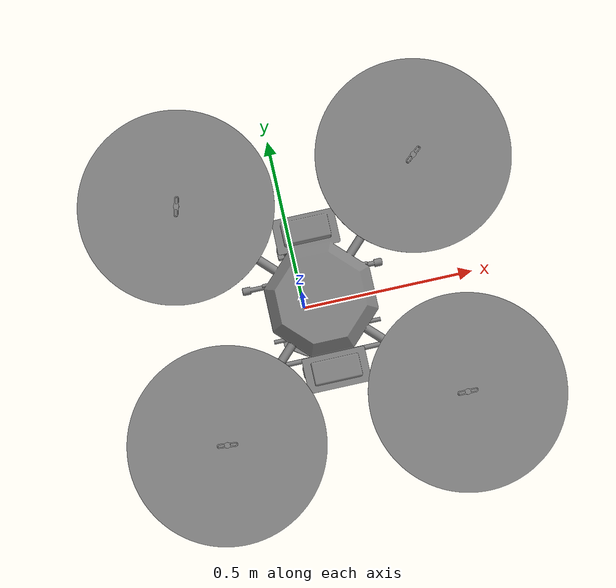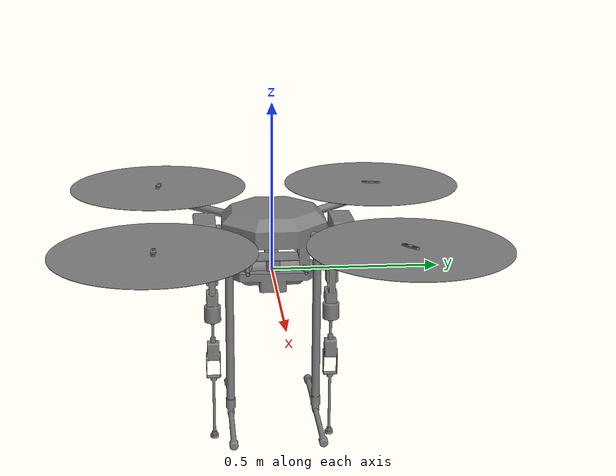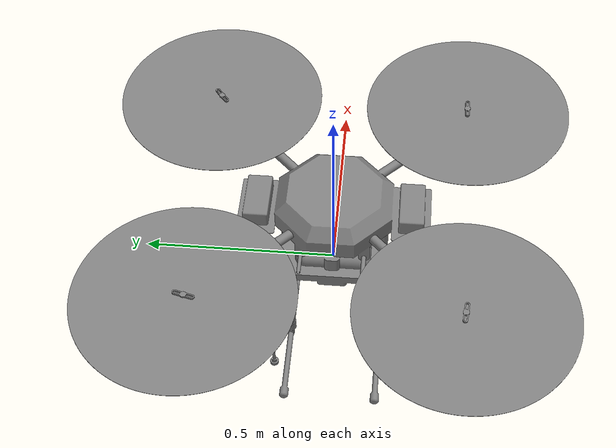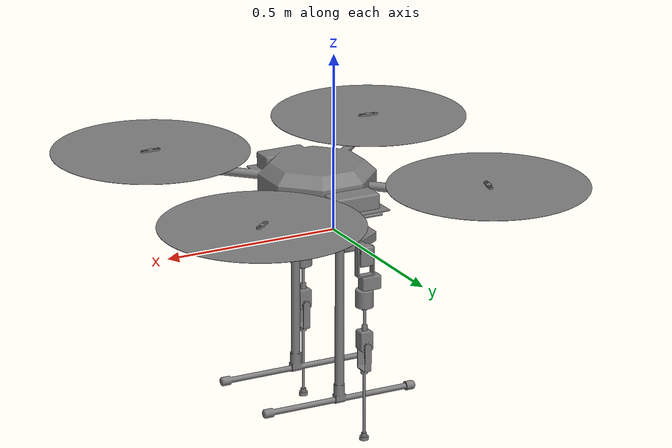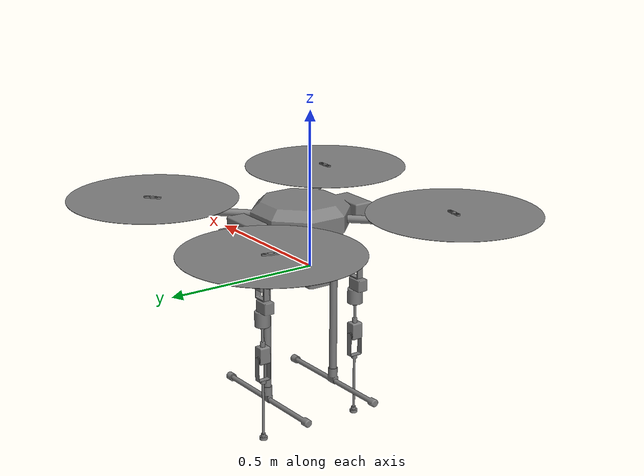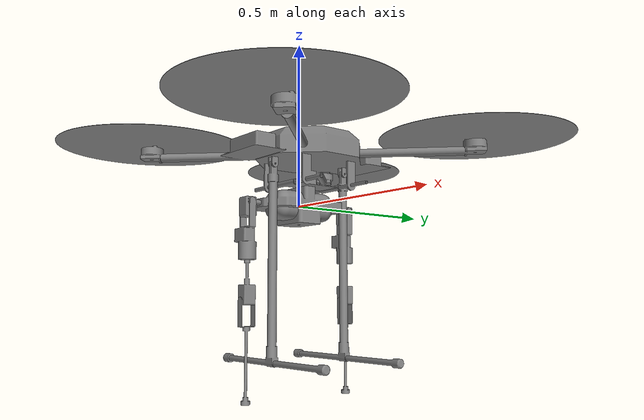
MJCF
<?xml version="1.0" ?>
<mujoco model="LiCAS_A1">
	<compiler meshdir="../meshes" angle="radian" autolimits="true" balanceinertia="true" boundmass="0.000001" boundinertia="0.000001"/>
	<option>
		<flag contact="enable"/>
	</option>
	<default>
		<default class="visual">
			<geom contype="0" conaffinity="0"/>
		</default>
		<default class="collision">
			<geom rgba="0.9 0.9 0.9 0.0"/>
		</default>
	</default>
	<asset>
		<mesh name="ShoulderPitchStructure" file="obj/ShoulderPitchStructure.obj" scale="1.0 1.0 1.0"/>
		<mesh name="UCX_ShoulderPitchStructure_001" file="stl/mjcf/UCX_ShoulderPitchStructure_001.stl" scale="1.0 1.0 1.0"/>
		<mesh name="UCX_ShoulderPitchStructure_002" file="stl/mjcf/UCX_ShoulderPitchStructure_002.stl" scale="1.0 1.0 1.0"/>
		<mesh name="UCX_ShoulderPitchStructure_003" file="stl/mjcf/UCX_ShoulderPitchStructure_003.stl" scale="1.0 1.0 1.0"/>
		<mesh name="ShoulderRollStructureRight" file="obj/ShoulderRollStructureRight.obj" scale="1.0 1.0 1.0"/>
		<mesh name="UCX_ShoulderRollStructureRight_001" file="stl/mjcf/UCX_ShoulderRollStructureRight_001.stl" scale="1.0 1.0 1.0"/>
		<mesh name="UCX_ShoulderRollStructureRight_002" file="stl/mjcf/UCX_ShoulderRollStructureRight_002.stl" scale="1.0 1.0 1.0"/>
		<mesh name="UCX_ShoulderRollStructureRight_003" file="stl/mjcf/UCX_ShoulderRollStructureRight_003.stl" scale="1.0 1.0 1.0"/>
		<mesh name="ShoulderRollStructureLeft" file="obj/ShoulderRollStructureLeft.obj" scale="1.0 1.0 1.0"/>
		<mesh name="UCX_ShoulderRollStructureLeft_001" file="stl/mjcf/UCX_ShoulderRollStructureLeft_001.stl" scale="1.0 1.0 1.0"/>
		<mesh name="UCX_ShoulderRollStructureLeft_002" file="stl/mjcf/UCX_ShoulderRollStructureLeft_002.stl" scale="1.0 1.0 1.0"/>
		<mesh name="UCX_ShoulderRollStructureLeft_003" file="stl/mjcf/UCX_ShoulderRollStructureLeft_003.stl" scale="1.0 1.0 1.0"/>
		<mesh name="ShoulderYawStructure" file="obj/ShoulderYawStructure.obj" scale="1.0 1.0 1.0"/>
		<mesh name="UCX_ShoulderYawStructure_001" file="stl/mjcf/UCX_ShoulderYawStructure_001.stl" scale="1.0 1.0 1.0"/>
		<mesh name="UCX_ShoulderYawStructure_002" file="stl/mjcf/UCX_ShoulderYawStructure_002.stl" scale="1.0 1.0 1.0"/>
		<mesh name="UCX_ShoulderYawStructure_003" file="stl/mjcf/UCX_ShoulderYawStructure_003.stl" scale="1.0 1.0 1.0"/>
		<mesh name="UCX_ShoulderYawStructure_004" file="stl/mjcf/UCX_ShoulderYawStructure_004.stl" scale="1.0 1.0 1.0"/>
		<mesh name="UCX_ShoulderYawStructure_005" file="stl/mjcf/UCX_ShoulderYawStructure_005.stl" scale="1.0 1.0 1.0"/>
		<mesh name="UCX_ShoulderYawStructure_006" file="stl/mjcf/UCX_ShoulderYawStructure_006.stl" scale="1.0 1.0 1.0"/>
		<mesh name="ElbowPitchStructureRight" file="obj/ElbowPitchStructureRight.obj" scale="1.0 1.0 1.0"/>
		<mesh name="UCX_ElbowPitchStructureRight_001" file="stl/mjcf/UCX_ElbowPitchStructureRight_001.stl" scale="1.0 1.0 1.0"/>
		<mesh name="UCX_ElbowPitchStructureRight_002" file="stl/mjcf/UCX_ElbowPitchStructureRight_002.stl" scale="1.0 1.0 1.0"/>
		<mesh name="UCX_ElbowPitchStructureRight_003" file="stl/mjcf/UCX_ElbowPitchStructureRight_003.stl" scale="1.0 1.0 1.0"/>
		<mesh name="UCX_ElbowPitchStructureRight_004" file="stl/mjcf/UCX_ElbowPitchStructureRight_004.stl" scale="1.0 1.0 1.0"/>
		<mesh name="UCX_ElbowPitchStructureRight_005" file="stl/mjcf/UCX_ElbowPitchStructureRight_005.stl" scale="1.0 1.0 1.0"/>
		<mesh name="ForearmLink" file="obj/ForearmLink.obj" scale="1.0 1.0 1.0"/>
		<mesh name="UCX_ForearmLink_001" file="stl/mjcf/UCX_ForearmLink_001.stl" scale="1.0 1.0 1.0"/>
		<mesh name="UCX_ForearmLink_002" file="stl/mjcf/UCX_ForearmLink_002.stl" scale="1.0 1.0 1.0"/>
		<mesh name="UCX_ForearmLink_003" file="stl/mjcf/UCX_ForearmLink_003.stl" scale="1.0 1.0 1.0"/>
		<mesh name="UCX_ForearmLink_004" file="stl/mjcf/UCX_ForearmLink_004.stl" scale="1.0 1.0 1.0"/>
		<mesh name="UCX_ForearmLink_005" file="stl/mjcf/UCX_ForearmLink_005.stl" scale="1.0 1.0 1.0"/>
		<mesh name="UCX_ForearmLink_006" file="stl/mjcf/UCX_ForearmLink_006.stl" scale="1.0 1.0 1.0"/>
		<mesh name="UCX_ForearmLink_007" file="stl/mjcf/UCX_ForearmLink_007.stl" scale="1.0 1.0 1.0"/>
		<mesh name="MultirotorX4Main" file="obj/MultirotorX4Main.obj" scale="1.0 1.0 1.0"/>
		<mesh name="UCX_MultirotorX4Main_001" file="stl/mjcf/UCX_MultirotorX4Main_001.stl" scale="1.0 1.0 1.0"/>
		<mesh name="UCX_MultirotorX4Main_002" file="stl/mjcf/UCX_MultirotorX4Main_002.stl" scale="1.0 1.0 1.0"/>
		<mesh name="UCX_MultirotorX4Main_003" file="stl/mjcf/UCX_MultirotorX4Main_003.stl" scale="1.0 1.0 1.0"/>
		<mesh name="UCX_MultirotorX4Main_004" file="stl/mjcf/UCX_MultirotorX4Main_004.stl" scale="1.0 1.0 1.0"/>
		<mesh name="UCX_MultirotorX4Main_005" file="stl/mjcf/UCX_MultirotorX4Main_005.stl" scale="1.0 1.0 1.0"/>
		<mesh name="UCX_MultirotorX4Main_006" file="stl/mjcf/UCX_MultirotorX4Main_006.stl" scale="1.0 1.0 1.0"/>
		<mesh name="UCX_MultirotorX4Main_007" file="stl/mjcf/UCX_MultirotorX4Main_007.stl" scale="1.0 1.0 1.0"/>
		<mesh name="UCX_MultirotorX4Main_008" file="stl/mjcf/UCX_MultirotorX4Main_008.stl" scale="1.0 1.0 1.0"/>
		<mesh name="UCX_MultirotorX4Main_009" file="stl/mjcf/UCX_MultirotorX4Main_009.stl" scale="1.0 1.0 1.0"/>
		<mesh name="UCX_MultirotorX4Main_010" file="stl/mjcf/UCX_MultirotorX4Main_010.stl" scale="1.0 1.0 1.0"/>
		<mesh name="UCX_MultirotorX4Main_011" file="stl/mjcf/UCX_MultirotorX4Main_011.stl" scale="1.0 1.0 1.0"/>
		<mesh name="UCX_MultirotorX4Main_012" file="stl/mjcf/UCX_MultirotorX4Main_012.stl" scale="1.0 1.0 1.0"/>
		<mesh name="UCX_MultirotorX4Main_013" file="stl/mjcf/UCX_MultirotorX4Main_013.stl" scale="1.0 1.0 1.0"/>
		<mesh name="MultirotorX4Propeller" file="obj/MultirotorX4Propeller.obj" scale="1.0 1.0 1.0"/>
		<mesh name="UCX_MultirotorX4Propeller_001" file="stl/mjcf/UCX_MultirotorX4Propeller_001.stl" scale="1.0 1.0 1.0"/>
		<mesh name="MultirotorX4Leg" file="obj/MultirotorX4Leg.obj" scale="1.0 1.0 1.0"/>
		<mesh name="UCX_MultirotorX4Leg_001" file="stl/mjcf/UCX_MultirotorX4Leg_001.stl" scale="1.0 1.0 1.0"/>
		<mesh name="UCX_MultirotorX4Leg_002" file="stl/mjcf/UCX_MultirotorX4Leg_002.stl" scale="1.0 1.0 1.0"/>
	</asset>
	<worldbody>
		<body name="LiCAS_A1" pos="0.0 0.0 0.0" quat="1.0 0.0 0.0 0.0">
			<freejoint/>
			<body name="multirotor_x4_main" pos="0.05 0.0 0.125" quat="1.0 0.0 0.0 0.0">
				<geom name="multirotor_x4_main_visual" type="mesh" pos="0.0 0.0 0.0" quat="1.0 0.0 0.0 0.0" mesh="MultirotorX4Main" class="visual"/>
				<geom name="multirotor_x4_main_collision_001" type="mesh" pos="0.0 0.0 0.0" quat="1.0 0.0 0.0 0.0" mesh="UCX_MultirotorX4Main_001" class="collision"/>
				<geom name="multirotor_x4_main_collision_002" type="mesh" pos="0.0 0.0 0.0" quat="1.0 0.0 0.0 0.0" mesh="UCX_MultirotorX4Main_002" class="collision"/>
				<geom name="multirotor_x4_main_collision_003" type="mesh" pos="0.0 0.0 0.0" quat="1.0 0.0 0.0 0.0" mesh="UCX_MultirotorX4Main_003" class="collision"/>
				<geom name="multirotor_x4_main_collision_004" type="mesh" pos="0.0 0.0 0.0" quat="1.0 0.0 0.0 0.0" mesh="UCX_MultirotorX4Main_004" class="collision"/>
				<geom name="multirotor_x4_main_collision_005" type="mesh" pos="0.0 0.0 0.0" quat="1.0 0.0 0.0 0.0" mesh="UCX_MultirotorX4Main_005" class="collision"/>
				<geom name="multirotor_x4_main_collision_006" type="mesh" pos="0.0 0.0 0.0" quat="1.0 0.0 0.0 0.0" mesh="UCX_MultirotorX4Main_006" class="collision"/>
				<geom name="multirotor_x4_main_collision_007" type="mesh" pos="0.0 0.0 0.0" quat="1.0 0.0 0.0 0.0" mesh="UCX_MultirotorX4Main_007" class="collision"/>
				<geom name="multirotor_x4_main_collision_008" type="mesh" pos="0.0 0.0 0.0" quat="1.0 0.0 0.0 0.0" mesh="UCX_MultirotorX4Main_008" class="collision"/>
				<geom name="multirotor_x4_main_collision_009" type="mesh" pos="0.0 0.0 0.0" quat="1.0 0.0 0.0 0.0" mesh="UCX_MultirotorX4Main_009" class="collision"/>
				<geom name="multirotor_x4_main_collision_010" type="mesh" pos="0.0 0.0 0.0" quat="1.0 0.0 0.0 0.0" mesh="UCX_MultirotorX4Main_010" class="collision"/>
				<geom name="multirotor_x4_main_collision_011" type="mesh" pos="0.0 0.0 0.0" quat="1.0 0.0 0.0 0.0" mesh="UCX_MultirotorX4Main_011" class="collision"/>
				<geom name="multirotor_x4_main_collision_012" type="mesh" pos="0.0 0.0 0.0" quat="1.0 0.0 0.0 0.0" mesh="UCX_MultirotorX4Main_012" class="collision"/>
				<geom name="multirotor_x4_main_collision_013" type="mesh" pos="0.0 0.0 0.0" quat="1.0 0.0 0.0 0.0" mesh="UCX_MultirotorX4Main_013" class="collision"/>
				<site name="multirotor_x4_propeller_001" pos="0.339089 -0.338345 0.059"/>
				<site name="multirotor_x4_propeller_002" pos="0.339089 0.338345 0.059"/>
				<site name="multirotor_x4_propeller_003" pos="-0.339089 -0.338345 0.059"/>
				<site name="multirotor_x4_propeller_004" pos="-0.339089 0.338345 0.059"/>
				<body name="multirotor_x4_propeller_001" pos="0.339089 -0.338345 0.059" quat="1.0 0.0 0.0 0.0">
					<geom name="multirotor_x4_propeller_001_visual" type="mesh" pos="0.0 0.0 0.0" quat="1.0 0.0 0.0 0.0" mesh="MultirotorX4Propeller" class="visual"/>
					<geom name="multirotor_x4_propeller_001_collision_001" type="mesh" pos="0.0 0.0 0.0" quat="1.0 0.0 0.0 0.0" mesh="UCX_MultirotorX4Propeller_001" class="collision"/>
				</body>
				<body name="multirotor_x4_propeller_002" pos="0.339089 0.338345 0.059" quat="1.0 0.0 0.0 0.0">
					<geom name="multirotor_x4_propeller_002_visual" type="mesh" pos="0.0 0.0 0.0" quat="1.0 0.0 0.0 0.0" mesh="MultirotorX4Propeller" class="visual"/>
					<geom name="multirotor_x4_propeller_002_collision_001" type="mesh" pos="0.0 0.0 0.0" quat="1.0 0.0 0.0 0.0" mesh="UCX_MultirotorX4Propeller_001" class="collision"/>
				</body>
				<body name="multirotor_x4_propeller_003" pos="-0.339089 -0.338345 0.059" quat="1.0 0.0 0.0 0.0">
					<geom name="multirotor_x4_propeller_003_visual" type="mesh" pos="0.0 0.0 0.0" quat="1.0 0.0 0.0 0.0" mesh="MultirotorX4Propeller" class="visual"/>
					<geom name="multirotor_x4_propeller_003_collision_001" type="mesh" pos="0.0 0.0 0.0" quat="1.0 0.0 0.0 0.0" mesh="UCX_MultirotorX4Propeller_001" class="collision"/>
				</body>
				<body name="multirotor_x4_propeller_004" pos="-0.339089 0.338345 0.059" quat="1.0 0.0 0.0 0.0">
					<geom name="multirotor_x4_propeller_004_visual" type="mesh" pos="0.0 0.0 0.0" quat="1.0 0.0 0.0 0.0" mesh="MultirotorX4Propeller" class="visual"/>
					<geom name="multirotor_x4_propeller_004_collision_001" type="mesh" pos="0.0 0.0 0.0" quat="1.0 0.0 0.0 0.0" mesh="UCX_MultirotorX4Propeller_001" class="collision"/>
				</body>
				<body name="multirotor_x4_leg_001" pos="0.0 -0.13 -0.02" quat="1.0 0.0 0.0 0.0">
					<joint name="multirotor_x4_leg_001_joint" type="hinge" range="0.0 1.4" axis="-1 0 0"/>
					<geom name="multirotor_x4_leg_001_visual" type="mesh" pos="0.0 0.0 0.0" quat="1.0 0.0 0.0 0.0" mesh="MultirotorX4Leg" class="visual"/>
					<geom name="multirotor_x4_leg_001_collision_001" type="mesh" pos="0.0 0.0 0.0" quat="1.0 0.0 0.0 0.0" mesh="UCX_MultirotorX4Leg_001" class="collision"/>
					<geom name="multirotor_x4_leg_001_collision_002" type="mesh" pos="0.0 0.0 0.0" quat="1.0 0.0 0.0 0.0" mesh="UCX_MultirotorX4Leg_002" class="collision"/>
				</body>
				<body name="multirotor_x4_leg_002" pos="0.0 0.13 -0.02" quat="1.0 0.0 0.0 0.0">
					<joint name="multirotor_x4_leg_002_joint" type="hinge" range="0.0 1.4" axis="1 0 0"/>
					<geom name="multirotor_x4_leg_002_visual" type="mesh" pos="0.0 0.0 0.0" quat="1.0 0.0 0.0 0.0" mesh="MultirotorX4Leg" class="visual"/>
					<geom name="multirotor_x4_leg_002_collision_001" type="mesh" pos="0.0 0.0 0.0" quat="1.0 0.0 0.0 0.0" mesh="UCX_MultirotorX4Leg_001" class="collision"/>
					<geom name="multirotor_x4_leg_002_collision_002" type="mesh" pos="0.0 0.0 0.0" quat="1.0 0.0 0.0 0.0" mesh="UCX_MultirotorX4Leg_002" class="collision"/>
				</body>
			</body>

			<body name="shoulder_pitch_structure" pos="0.0 0.0 0.0" quat="1.0 0.0 0.0 0.0">
				<inertial mass="0.639" pos="0 0 -1.2e-2" diaginertia="3.02e-3 8.64e-4 3.39e-3"/>
				<geom name="shoulder_pitch_structure_visual" type="mesh" pos="0.0 0.0 0.0" quat="1.0 0.0 0.0 0.0" mesh="ShoulderPitchStructure" class="visual"/>
				<geom name="shoulder_pitch_structure_collision_001" type="mesh" pos="0.0 0.0 0.0" quat="1.0 0.0 0.0 0.0" mesh="UCX_ShoulderPitchStructure_001" class="collision"/>
				<geom name="shoulder_pitch_structure_collision_002" type="mesh" pos="0.0 0.0 0.0" quat="1.0 0.0 0.0 0.0" mesh="UCX_ShoulderPitchStructure_002" class="collision"/>
				<geom name="shoulder_pitch_structure_collision_003" type="mesh" pos="0.0 0.0 0.0" quat="1.0 0.0 0.0 0.0" mesh="UCX_ShoulderPitchStructure_003" class="collision"/>
				<body name="shoulder_roll_structure_right" pos="0.0 -0.18 0.0" quat="1.0 0.0 0.0 0.0">
					<joint name="shoulder_roll_structure_right_joint" type="hinge" range="-3.14 3.14" axis="0 1 0"/>
					<inertial mass="0.233" pos="0 2.36e-2 9.46e-3" diaginertia="3.68e-4 1.16e-4 3.76e-4"/>
					<geom name="shoulder_roll_structure_right_visual" type="mesh" pos="0.0 0.0 0.0" quat="1.0 0.0 0.0 0.0" mesh="ShoulderRollStructureRight" class="visual"/>
					<geom name="shoulder_roll_structure_right_collision_001" type="mesh" pos="0.0 0.0 0.0" quat="1.0 0.0 0.0 0.0" mesh="UCX_ShoulderRollStructureRight_001" class="collision"/>
					<geom name="shoulder_roll_structure_right_collision_002" type="mesh" pos="0.0 0.0 0.0" quat="1.0 0.0 0.0 0.0" mesh="UCX_ShoulderRollStructureRight_002" class="collision"/>
					<body name="shoulder_yaw_structure_right" pos="0.0 0.0 0.0" quat="1.0 0.0 0.0 0.0">
						<joint name="shoulder_yaw_structure_right_joint" type="hinge" range="-0.7 0.7" axis="1 0 0"/>
						<inertial mass="0.246" pos="-1.5e-2 0 -1e-1" diaginertia="3.49e-4 4.46e-4 1.49e-4"/>
						<geom name="shoulder_yaw_structure_right_visual" type="mesh" pos="0.0 0.0 0.0" quat="1.0 0.0 0.0 0.0" mesh="ShoulderYawStructure" class="visual"/>
						<geom name="shoulder_yaw_structure_right_collision_001" type="mesh" pos="0.0 0.0 0.0" quat="1.0 0.0 0.0 0.0" mesh="UCX_ShoulderYawStructure_001" class="collision"/>
						<geom name="shoulder_yaw_structure_right_collision_002" type="mesh" pos="0.0 0.0 0.0" quat="1.0 0.0 0.0 0.0" mesh="UCX_ShoulderYawStructure_002" class="collision"/>
						<geom name="shoulder_yaw_structure_right_collision_003" type="mesh" pos="0.0 0.0 0.0" quat="1.0 0.0 0.0 0.0" mesh="UCX_ShoulderYawStructure_003" class="collision"/>
						<geom name="shoulder_yaw_structure_right_collision_004" type="mesh" pos="0.0 0.0 0.0" quat="1.0 0.0 0.0 0.0" mesh="UCX_ShoulderYawStructure_004" class="collision"/>
						<geom name="shoulder_yaw_structure_right_collision_005" type="mesh" pos="0.0 0.0 0.0" quat="1.0 0.0 0.0 0.0" mesh="UCX_ShoulderYawStructure_005" class="collision"/>
						<geom name="shoulder_yaw_structure_right_collision_006" type="mesh" pos="0.0 0.0 0.0" quat="1.0 0.0 0.0 0.0" mesh="UCX_ShoulderYawStructure_006" class="collision"/>
						<body name="elbow_pitch_structure_right" pos="0.0 0.0 -0.275" quat="1.0 0.0 0.0 0.0">
							<joint name="elbow_pitch_structure_right_joint" type="hinge" range="-1.57 1.57" axis="0 0 1"/>
							<inertial mass="0.214" pos="0 0 3.9e-2" diaginertia="4.21e-4 4.26e-4 5.01e-5"/>
							<geom name="elbow_pitch_structure_right_visual" type="mesh" pos="0.0 0.0 0.0" quat="1.0 0.0 0.0 0.0" mesh="ElbowPitchStructureRight" class="visual"/>
							<geom name="elbow_pitch_structure_right_collision_001" type="mesh" pos="0.0 0.0 0.0" quat="1.0 0.0 0.0 0.0" mesh="UCX_ElbowPitchStructureRight_001" class="collision"/>
							<geom name="elbow_pitch_structure_right_collision_002" type="mesh" pos="0.0 0.0 0.0" quat="1.0 0.0 0.0 0.0" mesh="UCX_ElbowPitchStructureRight_002" class="collision"/>
							<geom name="elbow_pitch_structure_right_collision_003" type="mesh" pos="0.0 0.0 0.0" quat="1.0 0.0 0.0 0.0" mesh="UCX_ElbowPitchStructureRight_003" class="collision"/>
							<geom name="elbow_pitch_structure_right_collision_004" type="mesh" pos="0.0 0.0 0.0" quat="1.0 0.0 0.0 0.0" mesh="UCX_ElbowPitchStructureRight_004" class="collision"/>
							<geom name="elbow_pitch_structure_right_collision_005" type="mesh" pos="0.0 0.0 0.0" quat="1.0 0.0 0.0 0.0" mesh="UCX_ElbowPitchStructureRight_005" class="collision"/>
							<body name="forearm_link_right" pos="0.0 0.0 0.0" quat="1.0 0.0 0.0 0.0">
								<joint name="forearm_link_right_joint" type="hinge" range="-1.57 1.57" axis="0 1 0"/>
								<inertial mass="0.106" pos="0 0 -9.2e-2" diaginertia="3.94e-4 3.75e-4 3.05e-5"/>
								<geom name="forearm_link_right_visual" type="mesh" pos="0.0 0.0 0.0" quat="1.0 0.0 0.0 0.0" mesh="ForearmLink" class="visual"/>
								<geom name="forearm_link_right_collision_001" type="mesh" pos="0.0 0.0 0.0" quat="1.0 0.0 0.0 0.0" mesh="UCX_ForearmLink_001" class="collision"/>
								<geom name="forearm_link_right_collision_002" type="mesh" pos="0.0 0.0 0.0" quat="1.0 0.0 0.0 0.0" mesh="UCX_ForearmLink_002" class="collision"/>
								<geom name="forearm_link_right_collision_003" type="mesh" pos="0.0 0.0 0.0" quat="1.0 0.0 0.0 0.0" mesh="UCX_ForearmLink_003" class="collision"/>
								<geom name="forearm_link_right_collision_004" type="mesh" pos="0.0 0.0 0.0" quat="1.0 0.0 0.0 0.0" mesh="UCX_ForearmLink_004" class="collision"/>
								<geom name="forearm_link_right_collision_005" type="mesh" pos="0.0 0.0 0.0" quat="1.0 0.0 0.0 0.0" mesh="UCX_ForearmLink_005" class="collision"/>
								<geom name="forearm_link_right_collision_006" type="mesh" pos="0.0 0.0 0.0" quat="1.0 0.0 0.0 0.0" mesh="UCX_ForearmLink_006" class="collision"/>
								<geom name="forearm_link_right_collision_007" type="mesh" pos="0.0 0.0 0.0" quat="1.0 0.0 0.0 0.0" mesh="UCX_ForearmLink_007" class="collision"/>
							</body>
						</body>
					</body>
				</body>
				<body name="shoulder_roll_structure_left" pos="0.0 0.18 0.0" quat="1.0 0.0 0.0 0.0">
					<joint name="shoulder_roll_structure_left_joint" type="hinge" range="-3.14 3.14" axis="0 1 0"/>
					<inertial mass="0.233" pos="0 2.36e-2 9.46e-3" diaginertia="3.68e-4 1.16e-4 3.76e-4"/>
					<geom name="shoulder_roll_structure_left_visual" type="mesh" pos="0.0 0.0 0.0" quat="1.0 0.0 0.0 0.0" mesh="ShoulderRollStructureLeft" class="visual"/>
					<geom name="shoulder_roll_structure_left_collision_001" type="mesh" pos="0.0 0.0 0.0" quat="1.0 0.0 0.0 0.0" mesh="UCX_ShoulderRollStructureLeft_001" class="collision"/>
					<geom name="shoulder_roll_structure_left_collision_002" type="mesh" pos="0.0 0.0 0.0" quat="1.0 0.0 0.0 0.0" mesh="UCX_ShoulderRollStructureLeft_002" class="collision"/>
					<body name="shoulder_yaw_structure_left" pos="0.0 0.0 0.0" quat="1.0 0.0 0.0 0.0">
						<joint name="shoulder_yaw_structure_left_joint" type="hinge" range="-0.7 0.7" axis="1 0 0"/>
						<inertial mass="0.246" pos="-1.5e-2 0 -1e-1" diaginertia="3.49e-4 4.46e-4 1.49e-4"/>
						<geom name="shoulder_yaw_structure_left_visual" type="mesh" pos="0.0 0.0 0.0" quat="1.0 0.0 0.0 0.0" mesh="ShoulderYawStructure" class="visual"/>
						<geom name="shoulder_yaw_structure_left_collision_001" type="mesh" pos="0.0 0.0 0.0" quat="1.0 0.0 0.0 0.0" mesh="UCX_ShoulderYawStructure_001" class="collision"/>
						<geom name="shoulder_yaw_structure_left_collision_002" type="mesh" pos="0.0 0.0 0.0" quat="1.0 0.0 0.0 0.0" mesh="UCX_ShoulderYawStructure_002" class="collision"/>
						<geom name="shoulder_yaw_structure_left_collision_003" type="mesh" pos="0.0 0.0 0.0" quat="1.0 0.0 0.0 0.0" mesh="UCX_ShoulderYawStructure_003" class="collision"/>
						<geom name="shoulder_yaw_structure_left_collision_004" type="mesh" pos="0.0 0.0 0.0" quat="1.0 0.0 0.0 0.0" mesh="UCX_ShoulderYawStructure_004" class="collision"/>
						<geom name="shoulder_yaw_structure_left_collision_005" type="mesh" pos="0.0 0.0 0.0" quat="1.0 0.0 0.0 0.0" mesh="UCX_ShoulderYawStructure_005" class="collision"/>
						<geom name="shoulder_yaw_structure_left_collision_006" type="mesh" pos="0.0 0.0 0.0" quat="1.0 0.0 0.0 0.0" mesh="UCX_ShoulderYawStructure_006" class="collision"/>
						<body name="elbow_pitch_structure_left" pos="0.0 0.0 -0.275" quat="1.0 0.0 0.0 0.0">
							<joint name="elbow_pitch_structure_left_joint" type="hinge" range="-1.57 1.57" axis="0 0 1"/>
							<inertial mass="0.214" pos="0 0 3.9e-2" diaginertia="4.21e-4 4.26e-4 5.01e-5"/>
							<geom name="elbow_pitch_structure_left_visual" type="mesh" pos="0.0 0.0 0.0" quat="1.0 0.0 0.0 0.0" mesh="ElbowPitchStructureRight" class="visual"/>
							<geom name="elbow_pitch_structure_left_collision_001" type="mesh" pos="0.0 0.0 0.0" quat="1.0 0.0 0.0 0.0" mesh="UCX_ElbowPitchStructureRight_001" class="collision"/>
							<geom name="elbow_pitch_structure_left_collision_002" type="mesh" pos="0.0 0.0 0.0" quat="1.0 0.0 0.0 0.0" mesh="UCX_ElbowPitchStructureRight_002" class="collision"/>
							<geom name="elbow_pitch_structure_left_collision_003" type="mesh" pos="0.0 0.0 0.0" quat="1.0 0.0 0.0 0.0" mesh="UCX_ElbowPitchStructureRight_003" class="collision"/>
							<geom name="elbow_pitch_structure_left_collision_004" type="mesh" pos="0.0 0.0 0.0" quat="1.0 0.0 0.0 0.0" mesh="UCX_ElbowPitchStructureRight_004" class="collision"/>
							<geom name="elbow_pitch_structure_left_collision_005" type="mesh" pos="0.0 0.0 0.0" quat="1.0 0.0 0.0 0.0" mesh="UCX_ElbowPitchStructureRight_005" class="collision"/>
							<body name="forearm_link_left" pos="0.0 0.0 0.0" quat="1.0 0.0 0.0 0.0">
								<joint name="forearm_link_left_joint" type="hinge" range="-1.57 1.57" axis="0 1 0"/>
								<inertial mass="0.106" pos="0 0 -9.2e-2" diaginertia="3.94e-4 3.75e-4 3.05e-5"/>
								<geom name="forearm_link_left_visual" type="mesh" pos="0.0 0.0 0.0" quat="1.0 0.0 0.0 0.0" mesh="ForearmLink" class="visual"/>
								<geom name="forearm_link_left_collision_001" type="mesh" pos="0.0 0.0 0.0" quat="1.0 0.0 0.0 0.0" mesh="UCX_ForearmLink_001" class="collision"/>
								<geom name="forearm_link_left_collision_002" type="mesh" pos="0.0 0.0 0.0" quat="1.0 0.0 0.0 0.0" mesh="UCX_ForearmLink_002" class="collision"/>
								<geom name="forearm_link_left_collision_003" type="mesh" pos="0.0 0.0 0.0" quat="1.0 0.0 0.0 0.0" mesh="UCX_ForearmLink_003" class="collision"/>
								<geom name="forearm_link_left_collision_004" type="mesh" pos="0.0 0.0 0.0" quat="1.0 0.0 0.0 0.0" mesh="UCX_ForearmLink_004" class="collision"/>
								<geom name="forearm_link_left_collision_005" type="mesh" pos="0.0 0.0 0.0" quat="1.0 0.0 0.0 0.0" mesh="UCX_ForearmLink_005" class="collision"/>
								<geom name="forearm_link_left_collision_006" type="mesh" pos="0.0 0.0 0.0" quat="1.0 0.0 0.0 0.0" mesh="UCX_ForearmLink_006" class="collision"/>
								<geom name="forearm_link_left_collision_007" type="mesh" pos="0.0 0.0 0.0" quat="1.0 0.0 0.0 0.0" mesh="UCX_ForearmLink_007" class="collision"/>
							</body>
						</body>
					</body>
				</body>
			</body>
		</body>
	</worldbody>

	<actuator>
		<motor name="thrust1" site="multirotor_x4_propeller_001" gear="0 0 1 0 0 -.02" ctrlrange="0 150"/>
		<motor name="thrust2" site="multirotor_x4_propeller_002" gear="0 0 1 0 0  .02" ctrlrange="0 150"/>
		<motor name="thrust3" site="multirotor_x4_propeller_003" gear="0 0 1 0 0  .02" ctrlrange="0 150"/>
		<motor name="thrust4" site="multirotor_x4_propeller_004" gear="0 0 1 0 0 -.02" ctrlrange="0 150"/>

		<position name="multirotor_x4_leg_001_actuator" joint="multirotor_x4_leg_001_joint" kp="500" kv="200" ctrlrange="0.0 1.4" forcerange="-100 100"/>
		<position name="multirotor_x4_leg_002_actuator" joint="multirotor_x4_leg_002_joint" kp="500" kv="200" ctrlrange="0.0 1.4" forcerange="-100 100"/>

		<position name="shoulder_roll_structure_right_actuator" joint="shoulder_roll_structure_right_joint" kp="10" kv="4" ctrlrange="-3.14 3.14" forcerange="-100 100"/>
		<position name="shoulder_yaw_structure_right_actuator" joint="shoulder_yaw_structure_right_joint" kp="20" kv="4" ctrlrange="-0.7 0.7" forcerange="-100 100"/>
		<position name="elbow_pitch_structure_right_actuator" joint="elbow_pitch_structure_right_joint" kp="0.5" kv="0.04" ctrlrange="-1.57 1.57" forcerange="-100 100"/>
		<position name="forearm_link_right_actuator" joint="forearm_link_right_joint" kp="0.5" kv="0.04" ctrlrange="-1.57 1.57" forcerange="-100 100"/>

		<position name="shoulder_roll_structure_left_actuator" joint="shoulder_roll_structure_left_joint" kp="10" kv="4" ctrlrange="-3.14 3.14" forcerange="-100 100"/>
		<position name="shoulder_yaw_structure_left_actuator" joint="shoulder_yaw_structure_left_joint" kp="20" kv="4" ctrlrange="-0.7 0.7" forcerange="-100 100"/>
		<position name="elbow_pitch_structure_left_actuator" joint="elbow_pitch_structure_left_joint" kp="0.5" kv="0.04" ctrlrange="-1.57 1.57" forcerange="-100 100"/>
		<position name="forearm_link_left_actuator" joint="forearm_link_left_joint" kp="0.5" kv="0.04" ctrlrange="-1.57 1.57" forcerange="-100 100"/>
	</actuator>
</mujoco>
